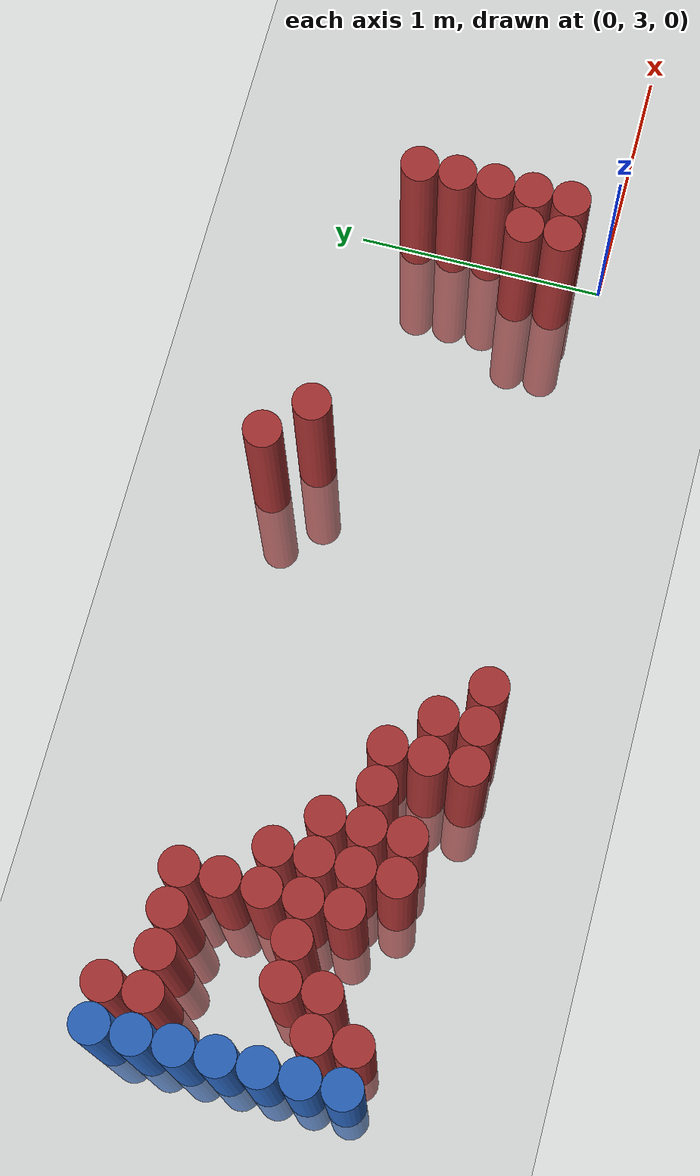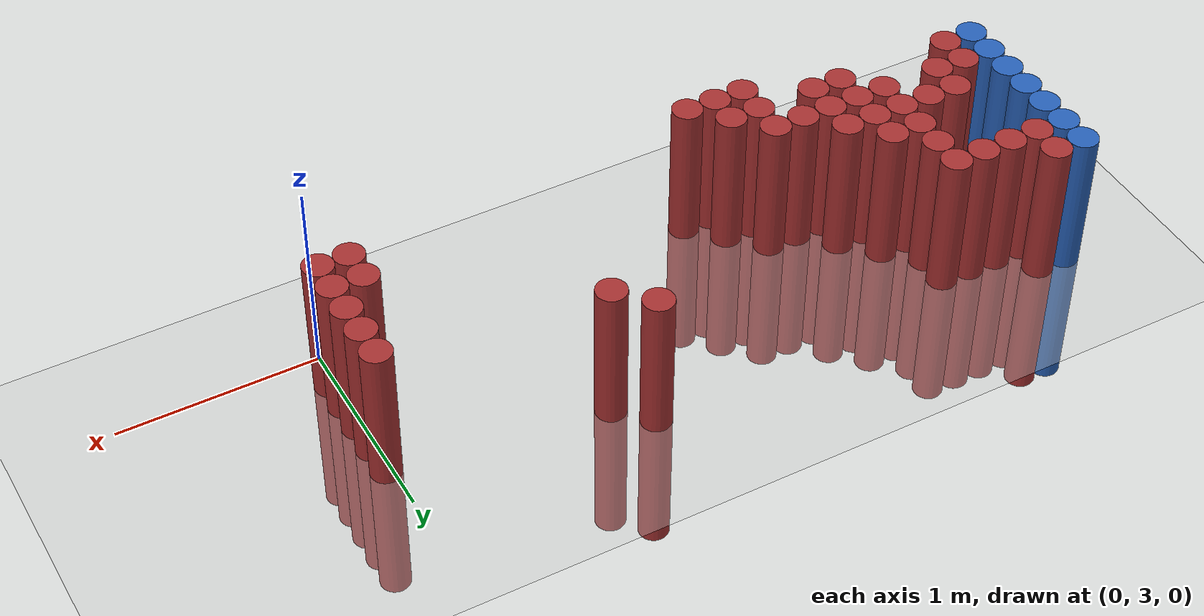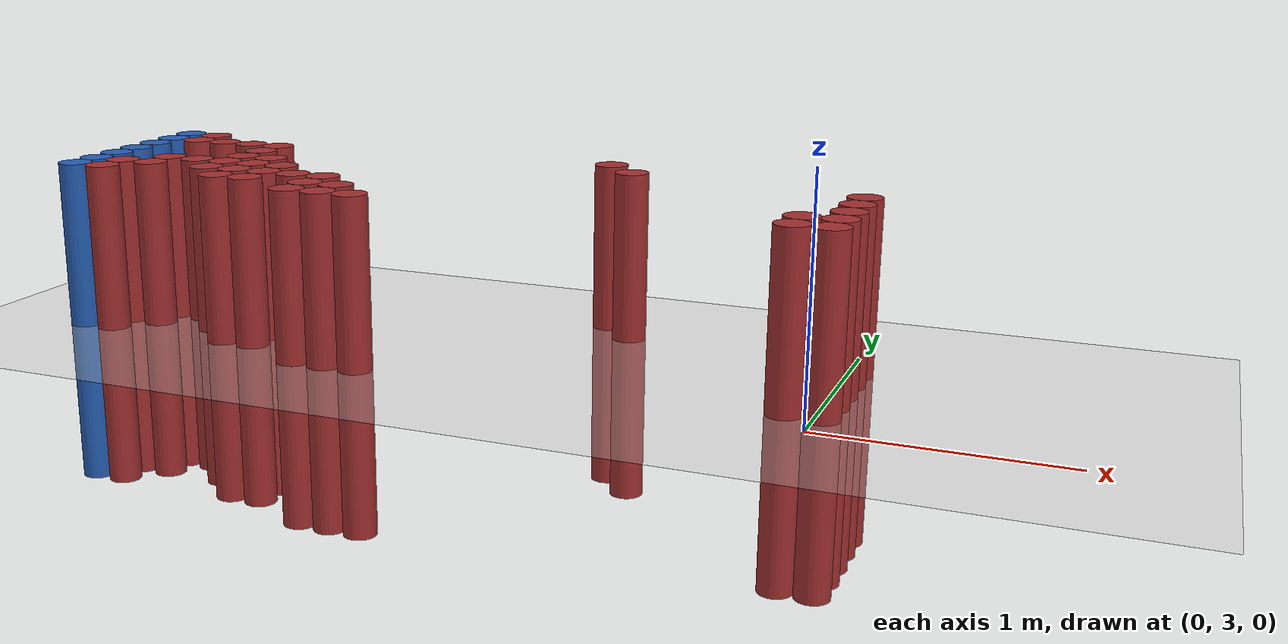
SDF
<sdf version="1.6">
 <world name="default">
  <model name="ground_plane">
   <static>1</static>
   <link name="link">
    <collision name="collision">
     <geometry><plane><normal>0 0 1</normal><size>100 100</size></plane></geometry>
     <surface><friction><ode><mu>100</mu><mu2>50</mu2></ode></friction></surface>
    </collision>
    <visual name="visual">
     <cast_shadows>0</cast_shadows>
     <geometry><plane><normal>0 0 1</normal><size>100 100</size></plane></geometry>
     <material>
      <script><uri>file://media/materials/scripts/gazebo.material</uri><name>Gazebo/Grey</name></script>
     </material>
    </visual>
   </link>
  </model>
  <model name="unit_cylinder_157">
   <static>1</static>
   <pose>-3.425000 3.175000 0.000000 0.000000 0.000000 0.000000</pose>
   <link name="link">
    <inertial>
     <mass>1</mass>
     <inertia><ixx>0.145833</ixx><ixy>0</ixy><ixz>0</ixz><iyy>0.145833</iyy><iyz>0</iyz><izz>0.125</izz></inertia>
    </inertial>
    <collision name="collision">
     <geometry><cylinder><radius>0.075000</radius><length>1.5</length></cylinder></geometry>
    </collision>
    <visual name="visual">
     <geometry><cylinder><radius>0.075000</radius><length>1.5</length></cylinder></geometry>
     <material>
      <ambient>0.152000 0.379000 0.720000 1</ambient>
      <diffuse>0.152000 0.379000 0.720000 1</diffuse>
     </material>
     <material>
      <script><name>Gazebo/Grey</name><uri>file://media/materials/scripts/gazebo.material</uri></script>
     </material>
    </visual>
   </link>
  </model>
  <model name="unit_cylinder_159">
   <static>1</static>
   <pose>-3.425000 3.325000 0.000000 0.000000 0.000000 0.000000</pose>
   <link name="link">
    <inertial>
     <mass>1</mass>
     <inertia><ixx>0.145833</ixx><ixy>0</ixy><ixz>0</ixz><iyy>0.145833</iyy><iyz>0</iyz><izz>0.125</izz></inertia>
    </inertial>
    <collision name="collision">
     <geometry><cylinder><radius>0.075000</radius><length>1.5</length></cylinder></geometry>
    </collision>
    <visual name="visual">
     <geometry><cylinder><radius>0.075000</radius><length>1.5</length></cylinder></geometry>
     <material>
      <ambient>0.152000 0.379000 0.720000 1</ambient>
      <diffuse>0.152000 0.379000 0.720000 1</diffuse>
     </material>
     <material>
      <script><name>Gazebo/Grey</name><uri>file://media/materials/scripts/gazebo.material</uri></script>
     </material>
    </visual>
   </link>
  </model>
  <model name="unit_cylinder_161">
   <static>1</static>
   <pose>-3.425000 3.475000 0.000000 0.000000 0.000000 0.000000</pose>
   <link name="link">
    <inertial>
     <mass>1</mass>
     <inertia><ixx>0.145833</ixx><ixy>0</ixy><ixz>0</ixz><iyy>0.145833</iyy><iyz>0</iyz><izz>0.125</izz></inertia>
    </inertial>
    <collision name="collision">
     <geometry><cylinder><radius>0.075000</radius><length>1.5</length></cylinder></geometry>
    </collision>
    <visual name="visual">
     <geometry><cylinder><radius>0.075000</radius><length>1.5</length></cylinder></geometry>
     <material>
      <ambient>0.152000 0.379000 0.720000 1</ambient>
      <diffuse>0.152000 0.379000 0.720000 1</diffuse>
     </material>
     <material>
      <script><name>Gazebo/Grey</name><uri>file://media/materials/scripts/gazebo.material</uri></script>
     </material>
    </visual>
   </link>
  </model>
  <model name="unit_cylinder_163">
   <static>1</static>
   <pose>-3.425000 3.625000 0.000000 0.000000 0.000000 0.000000</pose>
   <link name="link">
    <inertial>
     <mass>1</mass>
     <inertia><ixx>0.145833</ixx><ixy>0</ixy><ixz>0</ixz><iyy>0.145833</iyy><iyz>0</iyz><izz>0.125</izz></inertia>
    </inertial>
    <collision name="collision">
     <geometry><cylinder><radius>0.075000</radius><length>1.5</length></cylinder></geometry>
    </collision>
    <visual name="visual">
     <geometry><cylinder><radius>0.075000</radius><length>1.5</length></cylinder></geometry>
     <material>
      <ambient>0.152000 0.379000 0.720000 1</ambient>
      <diffuse>0.152000 0.379000 0.720000 1</diffuse>
     </material>
     <material>
      <script><name>Gazebo/Grey</name><uri>file://media/materials/scripts/gazebo.material</uri></script>
     </material>
    </visual>
   </link>
  </model>
  <model name="unit_cylinder_165">
   <static>1</static>
   <pose>-3.425000 3.775000 0.000000 0.000000 0.000000 0.000000</pose>
   <link name="link">
    <inertial>
     <mass>1</mass>
     <inertia><ixx>0.145833</ixx><ixy>0</ixy><ixz>0</ixz><iyy>0.145833</iyy><iyz>0</iyz><izz>0.125</izz></inertia>
    </inertial>
    <collision name="collision">
     <geometry><cylinder><radius>0.075000</radius><length>1.5</length></cylinder></geometry>
    </collision>
    <visual name="visual">
     <geometry><cylinder><radius>0.075000</radius><length>1.5</length></cylinder></geometry>
     <material>
      <ambient>0.152000 0.379000 0.720000 1</ambient>
      <diffuse>0.152000 0.379000 0.720000 1</diffuse>
     </material>
     <material>
      <script><name>Gazebo/Grey</name><uri>file://media/materials/scripts/gazebo.material</uri></script>
     </material>
    </visual>
   </link>
  </model>
  <model name="unit_cylinder_167">
   <static>1</static>
   <pose>-3.425000 3.925000 0.000000 0.000000 0.000000 0.000000</pose>
   <link name="link">
    <inertial>
     <mass>1</mass>
     <inertia><ixx>0.145833</ixx><ixy>0</ixy><ixz>0</ixz><iyy>0.145833</iyy><iyz>0</iyz><izz>0.125</izz></inertia>
    </inertial>
    <collision name="collision">
     <geometry><cylinder><radius>0.075000</radius><length>1.5</length></cylinder></geometry>
    </collision>
    <visual name="visual">
     <geometry><cylinder><radius>0.075000</radius><length>1.5</length></cylinder></geometry>
     <material>
      <ambient>0.152000 0.379000 0.720000 1</ambient>
      <diffuse>0.152000 0.379000 0.720000 1</diffuse>
     </material>
     <material>
      <script><name>Gazebo/Grey</name><uri>file://media/materials/scripts/gazebo.material</uri></script>
     </material>
    </visual>
   </link>
  </model>
  <model name="unit_cylinder_169">
   <static>1</static>
   <pose>-3.425000 4.075000 0.000000 0.000000 0.000000 0.000000</pose>
   <link name="link">
    <inertial>
     <mass>1</mass>
     <inertia><ixx>0.145833</ixx><ixy>0</ixy><ixz>0</ixz><iyy>0.145833</iyy><iyz>0</iyz><izz>0.125</izz></inertia>
    </inertial>
    <collision name="collision">
     <geometry><cylinder><radius>0.075000</radius><length>1.5</length></cylinder></geometry>
    </collision>
    <visual name="visual">
     <geometry><cylinder><radius>0.075000</radius><length>1.5</length></cylinder></geometry>
     <material>
      <ambient>0.152000 0.379000 0.720000 1</ambient>
      <diffuse>0.152000 0.379000 0.720000 1</diffuse>
     </material>
     <material>
      <script><name>Gazebo/Grey</name><uri>file://media/materials/scripts/gazebo.material</uri></script>
     </material>
    </visual>
   </link>
  </model>
  <model name="unit_cylinder_242">
   <static>1</static>
   <pose>-3.425000 3.175000 0.000000 0.000000 0.000000 0.000000</pose>
   <link name="link">
    <inertial>
     <mass>1</mass>
     <inertia><ixx>0.145833</ixx><ixy>0</ixy><ixz>0</ixz><iyy>0.145833</iyy><iyz>0</iyz><izz>0.125</izz></inertia>
    </inertial>
    <collision name="collision">
     <geometry><cylinder><radius>0.075000</radius><length>1.5</length></cylinder></geometry>
    </collision>
    <visual name="visual">
     <geometry><cylinder><radius>0.075000</radius><length>1.5</length></cylinder></geometry>
     <material>
      <ambient>0.152000 0.379000 0.720000 1</ambient>
      <diffuse>0.152000 0.379000 0.720000 1</diffuse>
     </material>
     <material>
      <script><name>Gazebo/Grey</name><uri>file://media/materials/scripts/gazebo.material</uri></script>
     </material>
    </visual>
   </link>
  </model>
  <model name="unit_cylinder_243">
   <static>1</static>
   <pose>-3.425000 3.325000 0.000000 0.000000 0.000000 0.000000</pose>
   <link name="link">
    <inertial>
     <mass>1</mass>
     <inertia><ixx>0.145833</ixx><ixy>0</ixy><ixz>0</ixz><iyy>0.145833</iyy><iyz>0</iyz><izz>0.125</izz></inertia>
    </inertial>
    <collision name="collision">
     <geometry><cylinder><radius>0.075000</radius><length>1.5</length></cylinder></geometry>
    </collision>
    <visual name="visual">
     <geometry><cylinder><radius>0.075000</radius><length>1.5</length></cylinder></geometry>
     <material>
      <ambient>0.152000 0.379000 0.720000 1</ambient>
      <diffuse>0.152000 0.379000 0.720000 1</diffuse>
     </material>
     <material>
      <script><name>Gazebo/Grey</name><uri>file://media/materials/scripts/gazebo.material</uri></script>
     </material>
    </visual>
   </link>
  </model>
  <model name="unit_cylinder_244">
   <static>1</static>
   <pose>-3.425000 3.475000 0.000000 0.000000 0.000000 0.000000</pose>
   <link name="link">
    <inertial>
     <mass>1</mass>
     <inertia><ixx>0.145833</ixx><ixy>0</ixy><ixz>0</ixz><iyy>0.145833</iyy><iyz>0</iyz><izz>0.125</izz></inertia>
    </inertial>
    <collision name="collision">
     <geometry><cylinder><radius>0.075000</radius><length>1.5</length></cylinder></geometry>
    </collision>
    <visual name="visual">
     <geometry><cylinder><radius>0.075000</radius><length>1.5</length></cylinder></geometry>
     <material>
      <ambient>0.152000 0.379000 0.720000 1</ambient>
      <diffuse>0.152000 0.379000 0.720000 1</diffuse>
     </material>
     <material>
      <script><name>Gazebo/Grey</name><uri>file://media/materials/scripts/gazebo.material</uri></script>
     </material>
    </visual>
   </link>
  </model>
  <model name="unit_cylinder_245">
   <static>1</static>
   <pose>-3.425000 3.625000 0.000000 0.000000 0.000000 0.000000</pose>
   <link name="link">
    <inertial>
     <mass>1</mass>
     <inertia><ixx>0.145833</ixx><ixy>0</ixy><ixz>0</ixz><iyy>0.145833</iyy><iyz>0</iyz><izz>0.125</izz></inertia>
    </inertial>
    <collision name="collision">
     <geometry><cylinder><radius>0.075000</radius><length>1.5</length></cylinder></geometry>
    </collision>
    <visual name="visual">
     <geometry><cylinder><radius>0.075000</radius><length>1.5</length></cylinder></geometry>
     <material>
      <ambient>0.152000 0.379000 0.720000 1</ambient>
      <diffuse>0.152000 0.379000 0.720000 1</diffuse>
     </material>
     <material>
      <script><name>Gazebo/Grey</name><uri>file://media/materials/scripts/gazebo.material</uri></script>
     </material>
    </visual>
   </link>
  </model>
  <model name="unit_cylinder_246">
   <static>1</static>
   <pose>-3.425000 3.775000 0.000000 0.000000 0.000000 0.000000</pose>
   <link name="link">
    <inertial>
     <mass>1</mass>
     <inertia><ixx>0.145833</ixx><ixy>0</ixy><ixz>0</ixz><iyy>0.145833</iyy><iyz>0</iyz><izz>0.125</izz></inertia>
    </inertial>
    <collision name="collision">
     <geometry><cylinder><radius>0.075000</radius><length>1.5</length></cylinder></geometry>
    </collision>
    <visual name="visual">
     <geometry><cylinder><radius>0.075000</radius><length>1.5</length></cylinder></geometry>
     <material>
      <ambient>0.152000 0.379000 0.720000 1</ambient>
      <diffuse>0.152000 0.379000 0.720000 1</diffuse>
     </material>
     <material>
      <script><name>Gazebo/Grey</name><uri>file://media/materials/scripts/gazebo.material</uri></script>
     </material>
    </visual>
   </link>
  </model>
  <model name="unit_cylinder_247">
   <static>1</static>
   <pose>-3.425000 3.925000 0.000000 0.000000 0.000000 0.000000</pose>
   <link name="link">
    <inertial>
     <mass>1</mass>
     <inertia><ixx>0.145833</ixx><ixy>0</ixy><ixz>0</ixz><iyy>0.145833</iyy><iyz>0</iyz><izz>0.125</izz></inertia>
    </inertial>
    <collision name="collision">
     <geometry><cylinder><radius>0.075000</radius><length>1.5</length></cylinder></geometry>
    </collision>
    <visual name="visual">
     <geometry><cylinder><radius>0.075000</radius><length>1.5</length></cylinder></geometry>
     <material>
      <ambient>0.152000 0.379000 0.720000 1</ambient>
      <diffuse>0.152000 0.379000 0.720000 1</diffuse>
     </material>
     <material>
      <script><name>Gazebo/Grey</name><uri>file://media/materials/scripts/gazebo.material</uri></script>
     </material>
    </visual>
   </link>
  </model>
  <model name="unit_cylinder_248">
   <static>1</static>
   <pose>-3.425000 4.075000 0.000000 0.000000 0.000000 0.000000</pose>
   <link name="link">
    <inertial>
     <mass>1</mass>
     <inertia><ixx>0.145833</ixx><ixy>0</ixy><ixz>0</ixz><iyy>0.145833</iyy><iyz>0</iyz><izz>0.125</izz></inertia>
    </inertial>
    <collision name="collision">
     <geometry><cylinder><radius>0.075000</radius><length>1.5</length></cylinder></geometry>
    </collision>
    <visual name="visual">
     <geometry><cylinder><radius>0.075000</radius><length>1.5</length></cylinder></geometry>
     <material>
      <ambient>0.152000 0.379000 0.720000 1</ambient>
      <diffuse>0.152000 0.379000 0.720000 1</diffuse>
     </material>
     <material>
      <script><name>Gazebo/Grey</name><uri>file://media/materials/scripts/gazebo.material</uri></script>
     </material>
    </visual>
   </link>
  </model>
  <model name="unit_cylinder_272">
   <static>1</static>
   <pose>-3.275000 3.175000 0.000000 0.000000 0.000000 0.000000</pose>
   <link name="link">
    <inertial>
     <mass>1</mass>
     <inertia><ixx>0.145833</ixx><ixy>0</ixy><ixz>0</ixz><iyy>0.145833</iyy><iyz>0</iyz><izz>0.125</izz></inertia>
    </inertial>
    <collision name="collision">
     <geometry><cylinder><radius>0.075000</radius><length>1.5</length></cylinder></geometry>
    </collision>
    <visual name="visual">
     <geometry><cylinder><radius>0.075000</radius><length>1.5</length></cylinder></geometry>
     <material>
      <ambient>0.648000 0.192000 0.192000 1</ambient>
      <diffuse>0.648000 0.192000 0.192000 1</diffuse>
     </material>
     <material>
      <script><name>Gazebo/Grey</name><uri>file://media/materials/scripts/gazebo.material</uri></script>
     </material>
    </visual>
   </link>
  </model>
  <model name="unit_cylinder_273">
   <static>1</static>
   <pose>-3.275000 3.325000 0.000000 0.000000 0.000000 0.000000</pose>
   <link name="link">
    <inertial>
     <mass>1</mass>
     <inertia><ixx>0.145833</ixx><ixy>0</ixy><ixz>0</ixz><iyy>0.145833</iyy><iyz>0</iyz><izz>0.125</izz></inertia>
    </inertial>
    <collision name="collision">
     <geometry><cylinder><radius>0.075000</radius><length>1.5</length></cylinder></geometry>
    </collision>
    <visual name="visual">
     <geometry><cylinder><radius>0.075000</radius><length>1.5</length></cylinder></geometry>
     <material>
      <ambient>0.648000 0.192000 0.192000 1</ambient>
      <diffuse>0.648000 0.192000 0.192000 1</diffuse>
     </material>
     <material>
      <script><name>Gazebo/Grey</name><uri>file://media/materials/scripts/gazebo.material</uri></script>
     </material>
    </visual>
   </link>
  </model>
  <model name="unit_cylinder_274">
   <static>1</static>
   <pose>-3.275000 3.925000 0.000000 0.000000 0.000000 0.000000</pose>
   <link name="link">
    <inertial>
     <mass>1</mass>
     <inertia><ixx>0.145833</ixx><ixy>0</ixy><ixz>0</ixz><iyy>0.145833</iyy><iyz>0</iyz><izz>0.125</izz></inertia>
    </inertial>
    <collision name="collision">
     <geometry><cylinder><radius>0.075000</radius><length>1.5</length></cylinder></geometry>
    </collision>
    <visual name="visual">
     <geometry><cylinder><radius>0.075000</radius><length>1.5</length></cylinder></geometry>
     <material>
      <ambient>0.648000 0.192000 0.192000 1</ambient>
      <diffuse>0.648000 0.192000 0.192000 1</diffuse>
     </material>
     <material>
      <script><name>Gazebo/Grey</name><uri>file://media/materials/scripts/gazebo.material</uri></script>
     </material>
    </visual>
   </link>
  </model>
  <model name="unit_cylinder_275">
   <static>1</static>
   <pose>-3.275000 4.075000 0.000000 0.000000 0.000000 0.000000</pose>
   <link name="link">
    <inertial>
     <mass>1</mass>
     <inertia><ixx>0.145833</ixx><ixy>0</ixy><ixz>0</ixz><iyy>0.145833</iyy><iyz>0</iyz><izz>0.125</izz></inertia>
    </inertial>
    <collision name="collision">
     <geometry><cylinder><radius>0.075000</radius><length>1.5</length></cylinder></geometry>
    </collision>
    <visual name="visual">
     <geometry><cylinder><radius>0.075000</radius><length>1.5</length></cylinder></geometry>
     <material>
      <ambient>0.648000 0.192000 0.192000 1</ambient>
      <diffuse>0.648000 0.192000 0.192000 1</diffuse>
     </material>
     <material>
      <script><name>Gazebo/Grey</name><uri>file://media/materials/scripts/gazebo.material</uri></script>
     </material>
    </visual>
   </link>
  </model>
  <model name="unit_cylinder_282">
   <static>1</static>
   <pose>-3.125000 3.325000 0.000000 0.000000 0.000000 0.000000</pose>
   <link name="link">
    <inertial>
     <mass>1</mass>
     <inertia><ixx>0.145833</ixx><ixy>0</ixy><ixz>0</ixz><iyy>0.145833</iyy><iyz>0</iyz><izz>0.125</izz></inertia>
    </inertial>
    <collision name="collision">
     <geometry><cylinder><radius>0.075000</radius><length>1.5</length></cylinder></geometry>
    </collision>
    <visual name="visual">
     <geometry><cylinder><radius>0.075000</radius><length>1.5</length></cylinder></geometry>
     <material>
      <ambient>0.648000 0.192000 0.192000 1</ambient>
      <diffuse>0.648000 0.192000 0.192000 1</diffuse>
     </material>
     <material>
      <script><name>Gazebo/Grey</name><uri>file://media/materials/scripts/gazebo.material</uri></script>
     </material>
    </visual>
   </link>
  </model>
  <model name="unit_cylinder_283">
   <static>1</static>
   <pose>-3.125000 3.475000 0.000000 0.000000 0.000000 0.000000</pose>
   <link name="link">
    <inertial>
     <mass>1</mass>
     <inertia><ixx>0.145833</ixx><ixy>0</ixy><ixz>0</ixz><iyy>0.145833</iyy><iyz>0</iyz><izz>0.125</izz></inertia>
    </inertial>
    <collision name="collision">
     <geometry><cylinder><radius>0.075000</radius><length>1.5</length></cylinder></geometry>
    </collision>
    <visual name="visual">
     <geometry><cylinder><radius>0.075000</radius><length>1.5</length></cylinder></geometry>
     <material>
      <ambient>0.648000 0.192000 0.192000 1</ambient>
      <diffuse>0.648000 0.192000 0.192000 1</diffuse>
     </material>
     <material>
      <script><name>Gazebo/Grey</name><uri>file://media/materials/scripts/gazebo.material</uri></script>
     </material>
    </visual>
   </link>
  </model>
  <model name="unit_cylinder_284">
   <static>1</static>
   <pose>-3.125000 3.925000 0.000000 0.000000 0.000000 0.000000</pose>
   <link name="link">
    <inertial>
     <mass>1</mass>
     <inertia><ixx>0.145833</ixx><ixy>0</ixy><ixz>0</ixz><iyy>0.145833</iyy><iyz>0</iyz><izz>0.125</izz></inertia>
    </inertial>
    <collision name="collision">
     <geometry><cylinder><radius>0.075000</radius><length>1.5</length></cylinder></geometry>
    </collision>
    <visual name="visual">
     <geometry><cylinder><radius>0.075000</radius><length>1.5</length></cylinder></geometry>
     <material>
      <ambient>0.648000 0.192000 0.192000 1</ambient>
      <diffuse>0.648000 0.192000 0.192000 1</diffuse>
     </material>
     <material>
      <script><name>Gazebo/Grey</name><uri>file://media/materials/scripts/gazebo.material</uri></script>
     </material>
    </visual>
   </link>
  </model>
  <model name="unit_cylinder_287">
   <static>1</static>
   <pose>-2.975000 3.475000 0.000000 0.000000 0.000000 0.000000</pose>
   <link name="link">
    <inertial>
     <mass>1</mass>
     <inertia><ixx>0.145833</ixx><ixy>0</ixy><ixz>0</ixz><iyy>0.145833</iyy><iyz>0</iyz><izz>0.125</izz></inertia>
    </inertial>
    <collision name="collision">
     <geometry><cylinder><radius>0.075000</radius><length>1.5</length></cylinder></geometry>
    </collision>
    <visual name="visual">
     <geometry><cylinder><radius>0.075000</radius><length>1.5</length></cylinder></geometry>
     <material>
      <ambient>0.648000 0.192000 0.192000 1</ambient>
      <diffuse>0.648000 0.192000 0.192000 1</diffuse>
     </material>
     <material>
      <script><name>Gazebo/Grey</name><uri>file://media/materials/scripts/gazebo.material</uri></script>
     </material>
    </visual>
   </link>
  </model>
  <model name="unit_cylinder_288">
   <static>1</static>
   <pose>-2.975000 3.925000 0.000000 0.000000 0.000000 0.000000</pose>
   <link name="link">
    <inertial>
     <mass>1</mass>
     <inertia><ixx>0.145833</ixx><ixy>0</ixy><ixz>0</ixz><iyy>0.145833</iyy><iyz>0</iyz><izz>0.125</izz></inertia>
    </inertial>
    <collision name="collision">
     <geometry><cylinder><radius>0.075000</radius><length>1.5</length></cylinder></geometry>
    </collision>
    <visual name="visual">
     <geometry><cylinder><radius>0.075000</radius><length>1.5</length></cylinder></geometry>
     <material>
      <ambient>0.648000 0.192000 0.192000 1</ambient>
      <diffuse>0.648000 0.192000 0.192000 1</diffuse>
     </material>
     <material>
      <script><name>Gazebo/Grey</name><uri>file://media/materials/scripts/gazebo.material</uri></script>
     </material>
    </visual>
   </link>
  </model>
  <model name="unit_cylinder_290">
   <static>1</static>
   <pose>-2.825000 3.325000 0.000000 0.000000 0.000000 0.000000</pose>
   <link name="link">
    <inertial>
     <mass>1</mass>
     <inertia><ixx>0.145833</ixx><ixy>0</ixy><ixz>0</ixz><iyy>0.145833</iyy><iyz>0</iyz><izz>0.125</izz></inertia>
    </inertial>
    <collision name="collision">
     <geometry><cylinder><radius>0.075000</radius><length>1.5</length></cylinder></geometry>
    </collision>
    <visual name="visual">
     <geometry><cylinder><radius>0.075000</radius><length>1.5</length></cylinder></geometry>
     <material>
      <ambient>0.648000 0.192000 0.192000 1</ambient>
      <diffuse>0.648000 0.192000 0.192000 1</diffuse>
     </material>
     <material>
      <script><name>Gazebo/Grey</name><uri>file://media/materials/scripts/gazebo.material</uri></script>
     </material>
    </visual>
   </link>
  </model>
  <model name="unit_cylinder_291">
   <static>1</static>
   <pose>-2.825000 3.475000 0.000000 0.000000 0.000000 0.000000</pose>
   <link name="link">
    <inertial>
     <mass>1</mass>
     <inertia><ixx>0.145833</ixx><ixy>0</ixy><ixz>0</ixz><iyy>0.145833</iyy><iyz>0</iyz><izz>0.125</izz></inertia>
    </inertial>
    <collision name="collision">
     <geometry><cylinder><radius>0.075000</radius><length>1.5</length></cylinder></geometry>
    </collision>
    <visual name="visual">
     <geometry><cylinder><radius>0.075000</radius><length>1.5</length></cylinder></geometry>
     <material>
      <ambient>0.648000 0.192000 0.192000 1</ambient>
      <diffuse>0.648000 0.192000 0.192000 1</diffuse>
     </material>
     <material>
      <script><name>Gazebo/Grey</name><uri>file://media/materials/scripts/gazebo.material</uri></script>
     </material>
    </visual>
   </link>
  </model>
  <model name="unit_cylinder_292">
   <static>1</static>
   <pose>-2.825000 3.625000 0.000000 0.000000 0.000000 0.000000</pose>
   <link name="link">
    <inertial>
     <mass>1</mass>
     <inertia><ixx>0.145833</ixx><ixy>0</ixy><ixz>0</ixz><iyy>0.145833</iyy><iyz>0</iyz><izz>0.125</izz></inertia>
    </inertial>
    <collision name="collision">
     <geometry><cylinder><radius>0.075000</radius><length>1.5</length></cylinder></geometry>
    </collision>
    <visual name="visual">
     <geometry><cylinder><radius>0.075000</radius><length>1.5</length></cylinder></geometry>
     <material>
      <ambient>0.648000 0.192000 0.192000 1</ambient>
      <diffuse>0.648000 0.192000 0.192000 1</diffuse>
     </material>
     <material>
      <script><name>Gazebo/Grey</name><uri>file://media/materials/scripts/gazebo.material</uri></script>
     </material>
    </visual>
   </link>
  </model>
  <model name="unit_cylinder_293">
   <static>1</static>
   <pose>-2.825000 3.775000 0.000000 0.000000 0.000000 0.000000</pose>
   <link name="link">
    <inertial>
     <mass>1</mass>
     <inertia><ixx>0.145833</ixx><ixy>0</ixy><ixz>0</ixz><iyy>0.145833</iyy><iyz>0</iyz><izz>0.125</izz></inertia>
    </inertial>
    <collision name="collision">
     <geometry><cylinder><radius>0.075000</radius><length>1.5</length></cylinder></geometry>
    </collision>
    <visual name="visual">
     <geometry><cylinder><radius>0.075000</radius><length>1.5</length></cylinder></geometry>
     <material>
      <ambient>0.648000 0.192000 0.192000 1</ambient>
      <diffuse>0.648000 0.192000 0.192000 1</diffuse>
     </material>
     <material>
      <script><name>Gazebo/Grey</name><uri>file://media/materials/scripts/gazebo.material</uri></script>
     </material>
    </visual>
   </link>
  </model>
  <model name="unit_cylinder_294">
   <static>1</static>
   <pose>-2.825000 3.925000 0.000000 0.000000 0.000000 0.000000</pose>
   <link name="link">
    <inertial>
     <mass>1</mass>
     <inertia><ixx>0.145833</ixx><ixy>0</ixy><ixz>0</ixz><iyy>0.145833</iyy><iyz>0</iyz><izz>0.125</izz></inertia>
    </inertial>
    <collision name="collision">
     <geometry><cylinder><radius>0.075000</radius><length>1.5</length></cylinder></geometry>
    </collision>
    <visual name="visual">
     <geometry><cylinder><radius>0.075000</radius><length>1.5</length></cylinder></geometry>
     <material>
      <ambient>0.648000 0.192000 0.192000 1</ambient>
      <diffuse>0.648000 0.192000 0.192000 1</diffuse>
     </material>
     <material>
      <script><name>Gazebo/Grey</name><uri>file://media/materials/scripts/gazebo.material</uri></script>
     </material>
    </visual>
   </link>
  </model>
  <model name="unit_cylinder_303">
   <static>1</static>
   <pose>-2.675000 3.175000 0.000000 0.000000 0.000000 0.000000</pose>
   <link name="link">
    <inertial>
     <mass>1</mass>
     <inertia><ixx>0.145833</ixx><ixy>0</ixy><ixz>0</ixz><iyy>0.145833</iyy><iyz>0</iyz><izz>0.125</izz></inertia>
    </inertial>
    <collision name="collision">
     <geometry><cylinder><radius>0.075000</radius><length>1.5</length></cylinder></geometry>
    </collision>
    <visual name="visual">
     <geometry><cylinder><radius>0.075000</radius><length>1.5</length></cylinder></geometry>
     <material>
      <ambient>0.648000 0.192000 0.192000 1</ambient>
      <diffuse>0.648000 0.192000 0.192000 1</diffuse>
     </material>
     <material>
      <script><name>Gazebo/Grey</name><uri>file://media/materials/scripts/gazebo.material</uri></script>
     </material>
    </visual>
   </link>
  </model>
  <model name="unit_cylinder_304">
   <static>1</static>
   <pose>-2.675000 3.325000 0.000000 0.000000 0.000000 0.000000</pose>
   <link name="link">
    <inertial>
     <mass>1</mass>
     <inertia><ixx>0.145833</ixx><ixy>0</ixy><ixz>0</ixz><iyy>0.145833</iyy><iyz>0</iyz><izz>0.125</izz></inertia>
    </inertial>
    <collision name="collision">
     <geometry><cylinder><radius>0.075000</radius><length>1.5</length></cylinder></geometry>
    </collision>
    <visual name="visual">
     <geometry><cylinder><radius>0.075000</radius><length>1.5</length></cylinder></geometry>
     <material>
      <ambient>0.648000 0.192000 0.192000 1</ambient>
      <diffuse>0.648000 0.192000 0.192000 1</diffuse>
     </material>
     <material>
      <script><name>Gazebo/Grey</name><uri>file://media/materials/scripts/gazebo.material</uri></script>
     </material>
    </visual>
   </link>
  </model>
  <model name="unit_cylinder_305">
   <static>1</static>
   <pose>-2.675000 3.475000 0.000000 0.000000 0.000000 0.000000</pose>
   <link name="link">
    <inertial>
     <mass>1</mass>
     <inertia><ixx>0.145833</ixx><ixy>0</ixy><ixz>0</ixz><iyy>0.145833</iyy><iyz>0</iyz><izz>0.125</izz></inertia>
    </inertial>
    <collision name="collision">
     <geometry><cylinder><radius>0.075000</radius><length>1.5</length></cylinder></geometry>
    </collision>
    <visual name="visual">
     <geometry><cylinder><radius>0.075000</radius><length>1.5</length></cylinder></geometry>
     <material>
      <ambient>0.648000 0.192000 0.192000 1</ambient>
      <diffuse>0.648000 0.192000 0.192000 1</diffuse>
     </material>
     <material>
      <script><name>Gazebo/Grey</name><uri>file://media/materials/scripts/gazebo.material</uri></script>
     </material>
    </visual>
   </link>
  </model>
  <model name="unit_cylinder_306">
   <static>1</static>
   <pose>-2.675000 3.625000 0.000000 0.000000 0.000000 0.000000</pose>
   <link name="link">
    <inertial>
     <mass>1</mass>
     <inertia><ixx>0.145833</ixx><ixy>0</ixy><ixz>0</ixz><iyy>0.145833</iyy><iyz>0</iyz><izz>0.125</izz></inertia>
    </inertial>
    <collision name="collision">
     <geometry><cylinder><radius>0.075000</radius><length>1.5</length></cylinder></geometry>
    </collision>
    <visual name="visual">
     <geometry><cylinder><radius>0.075000</radius><length>1.5</length></cylinder></geometry>
     <material>
      <ambient>0.648000 0.192000 0.192000 1</ambient>
      <diffuse>0.648000 0.192000 0.192000 1</diffuse>
     </material>
     <material>
      <script><name>Gazebo/Grey</name><uri>file://media/materials/scripts/gazebo.material</uri></script>
     </material>
    </visual>
   </link>
  </model>
  <model name="unit_cylinder_320">
   <static>1</static>
   <pose>-2.525000 3.175000 0.000000 0.000000 0.000000 0.000000</pose>
   <link name="link">
    <inertial>
     <mass>1</mass>
     <inertia><ixx>0.145833</ixx><ixy>0</ixy><ixz>0</ixz><iyy>0.145833</iyy><iyz>0</iyz><izz>0.125</izz></inertia>
    </inertial>
    <collision name="collision">
     <geometry><cylinder><radius>0.075000</radius><length>1.5</length></cylinder></geometry>
    </collision>
    <visual name="visual">
     <geometry><cylinder><radius>0.075000</radius><length>1.5</length></cylinder></geometry>
     <material>
      <ambient>0.648000 0.192000 0.192000 1</ambient>
      <diffuse>0.648000 0.192000 0.192000 1</diffuse>
     </material>
     <material>
      <script><name>Gazebo/Grey</name><uri>file://media/materials/scripts/gazebo.material</uri></script>
     </material>
    </visual>
   </link>
  </model>
  <model name="unit_cylinder_321">
   <static>1</static>
   <pose>-2.525000 3.325000 0.000000 0.000000 0.000000 0.000000</pose>
   <link name="link">
    <inertial>
     <mass>1</mass>
     <inertia><ixx>0.145833</ixx><ixy>0</ixy><ixz>0</ixz><iyy>0.145833</iyy><iyz>0</iyz><izz>0.125</izz></inertia>
    </inertial>
    <collision name="collision">
     <geometry><cylinder><radius>0.075000</radius><length>1.5</length></cylinder></geometry>
    </collision>
    <visual name="visual">
     <geometry><cylinder><radius>0.075000</radius><length>1.5</length></cylinder></geometry>
     <material>
      <ambient>0.648000 0.192000 0.192000 1</ambient>
      <diffuse>0.648000 0.192000 0.192000 1</diffuse>
     </material>
     <material>
      <script><name>Gazebo/Grey</name><uri>file://media/materials/scripts/gazebo.material</uri></script>
     </material>
    </visual>
   </link>
  </model>
  <model name="unit_cylinder_322">
   <static>1</static>
   <pose>-2.525000 3.475000 0.000000 0.000000 0.000000 0.000000</pose>
   <link name="link">
    <inertial>
     <mass>1</mass>
     <inertia><ixx>0.145833</ixx><ixy>0</ixy><ixz>0</ixz><iyy>0.145833</iyy><iyz>0</iyz><izz>0.125</izz></inertia>
    </inertial>
    <collision name="collision">
     <geometry><cylinder><radius>0.075000</radius><length>1.5</length></cylinder></geometry>
    </collision>
    <visual name="visual">
     <geometry><cylinder><radius>0.075000</radius><length>1.5</length></cylinder></geometry>
     <material>
      <ambient>0.648000 0.192000 0.192000 1</ambient>
      <diffuse>0.648000 0.192000 0.192000 1</diffuse>
     </material>
     <material>
      <script><name>Gazebo/Grey</name><uri>file://media/materials/scripts/gazebo.material</uri></script>
     </material>
    </visual>
   </link>
  </model>
  <model name="unit_cylinder_337">
   <static>1</static>
   <pose>-2.375000 3.325000 0.000000 0.000000 0.000000 0.000000</pose>
   <link name="link">
    <inertial>
     <mass>1</mass>
     <inertia><ixx>0.145833</ixx><ixy>0</ixy><ixz>0</ixz><iyy>0.145833</iyy><iyz>0</iyz><izz>0.125</izz></inertia>
    </inertial>
    <collision name="collision">
     <geometry><cylinder><radius>0.075000</radius><length>1.5</length></cylinder></geometry>
    </collision>
    <visual name="visual">
     <geometry><cylinder><radius>0.075000</radius><length>1.5</length></cylinder></geometry>
     <material>
      <ambient>0.648000 0.192000 0.192000 1</ambient>
      <diffuse>0.648000 0.192000 0.192000 1</diffuse>
     </material>
     <material>
      <script><name>Gazebo/Grey</name><uri>file://media/materials/scripts/gazebo.material</uri></script>
     </material>
    </visual>
   </link>
  </model>
  <model name="unit_cylinder_345">
   <static>1</static>
   <pose>-2.225000 3.025000 0.000000 0.000000 0.000000 0.000000</pose>
   <link name="link">
    <inertial>
     <mass>1</mass>
     <inertia><ixx>0.145833</ixx><ixy>0</ixy><ixz>0</ixz><iyy>0.145833</iyy><iyz>0</iyz><izz>0.125</izz></inertia>
    </inertial>
    <collision name="collision">
     <geometry><cylinder><radius>0.075000</radius><length>1.5</length></cylinder></geometry>
    </collision>
    <visual name="visual">
     <geometry><cylinder><radius>0.075000</radius><length>1.5</length></cylinder></geometry>
     <material>
      <ambient>0.648000 0.192000 0.192000 1</ambient>
      <diffuse>0.648000 0.192000 0.192000 1</diffuse>
     </material>
     <material>
      <script><name>Gazebo/Grey</name><uri>file://media/materials/scripts/gazebo.material</uri></script>
     </material>
    </visual>
   </link>
  </model>
  <model name="unit_cylinder_346">
   <static>1</static>
   <pose>-2.225000 3.175000 0.000000 0.000000 0.000000 0.000000</pose>
   <link name="link">
    <inertial>
     <mass>1</mass>
     <inertia><ixx>0.145833</ixx><ixy>0</ixy><ixz>0</ixz><iyy>0.145833</iyy><iyz>0</iyz><izz>0.125</izz></inertia>
    </inertial>
    <collision name="collision">
     <geometry><cylinder><radius>0.075000</radius><length>1.5</length></cylinder></geometry>
    </collision>
    <visual name="visual">
     <geometry><cylinder><radius>0.075000</radius><length>1.5</length></cylinder></geometry>
     <material>
      <ambient>0.648000 0.192000 0.192000 1</ambient>
      <diffuse>0.648000 0.192000 0.192000 1</diffuse>
     </material>
     <material>
      <script><name>Gazebo/Grey</name><uri>file://media/materials/scripts/gazebo.material</uri></script>
     </material>
    </visual>
   </link>
  </model>
  <model name="unit_cylinder_347">
   <static>1</static>
   <pose>-2.225000 3.325000 0.000000 0.000000 0.000000 0.000000</pose>
   <link name="link">
    <inertial>
     <mass>1</mass>
     <inertia><ixx>0.145833</ixx><ixy>0</ixy><ixz>0</ixz><iyy>0.145833</iyy><iyz>0</iyz><izz>0.125</izz></inertia>
    </inertial>
    <collision name="collision">
     <geometry><cylinder><radius>0.075000</radius><length>1.5</length></cylinder></geometry>
    </collision>
    <visual name="visual">
     <geometry><cylinder><radius>0.075000</radius><length>1.5</length></cylinder></geometry>
     <material>
      <ambient>0.648000 0.192000 0.192000 1</ambient>
      <diffuse>0.648000 0.192000 0.192000 1</diffuse>
     </material>
     <material>
      <script><name>Gazebo/Grey</name><uri>file://media/materials/scripts/gazebo.material</uri></script>
     </material>
    </visual>
   </link>
  </model>
  <model name="unit_cylinder_353">
   <static>1</static>
   <pose>-2.075000 3.025000 0.000000 0.000000 0.000000 0.000000</pose>
   <link name="link">
    <inertial>
     <mass>1</mass>
     <inertia><ixx>0.145833</ixx><ixy>0</ixy><ixz>0</ixz><iyy>0.145833</iyy><iyz>0</iyz><izz>0.125</izz></inertia>
    </inertial>
    <collision name="collision">
     <geometry><cylinder><radius>0.075000</radius><length>1.5</length></cylinder></geometry>
    </collision>
    <visual name="visual">
     <geometry><cylinder><radius>0.075000</radius><length>1.5</length></cylinder></geometry>
     <material>
      <ambient>0.648000 0.192000 0.192000 1</ambient>
      <diffuse>0.648000 0.192000 0.192000 1</diffuse>
     </material>
     <material>
      <script><name>Gazebo/Grey</name><uri>file://media/materials/scripts/gazebo.material</uri></script>
     </material>
    </visual>
   </link>
  </model>
  <model name="unit_cylinder_354">
   <static>1</static>
   <pose>-2.075000 3.175000 0.000000 0.000000 0.000000 0.000000</pose>
   <link name="link">
    <inertial>
     <mass>1</mass>
     <inertia><ixx>0.145833</ixx><ixy>0</ixy><ixz>0</ixz><iyy>0.145833</iyy><iyz>0</iyz><izz>0.125</izz></inertia>
    </inertial>
    <collision name="collision">
     <geometry><cylinder><radius>0.075000</radius><length>1.5</length></cylinder></geometry>
    </collision>
    <visual name="visual">
     <geometry><cylinder><radius>0.075000</radius><length>1.5</length></cylinder></geometry>
     <material>
      <ambient>0.648000 0.192000 0.192000 1</ambient>
      <diffuse>0.648000 0.192000 0.192000 1</diffuse>
     </material>
     <material>
      <script><name>Gazebo/Grey</name><uri>file://media/materials/scripts/gazebo.material</uri></script>
     </material>
    </visual>
   </link>
  </model>
  <model name="unit_cylinder_358">
   <static>1</static>
   <pose>-1.925000 3.025000 0.000000 0.000000 0.000000 0.000000</pose>
   <link name="link">
    <inertial>
     <mass>1</mass>
     <inertia><ixx>0.145833</ixx><ixy>0</ixy><ixz>0</ixz><iyy>0.145833</iyy><iyz>0</iyz><izz>0.125</izz></inertia>
    </inertial>
    <collision name="collision">
     <geometry><cylinder><radius>0.075000</radius><length>1.5</length></cylinder></geometry>
    </collision>
    <visual name="visual">
     <geometry><cylinder><radius>0.075000</radius><length>1.5</length></cylinder></geometry>
     <material>
      <ambient>0.648000 0.192000 0.192000 1</ambient>
      <diffuse>0.648000 0.192000 0.192000 1</diffuse>
     </material>
     <material>
      <script><name>Gazebo/Grey</name><uri>file://media/materials/scripts/gazebo.material</uri></script>
     </material>
    </visual>
   </link>
  </model>
  <model name="unit_cylinder_385">
   <static>1</static>
   <pose>-1.175000 4.075000 0.000000 0.000000 0.000000 0.000000</pose>
   <link name="link">
    <inertial>
     <mass>1</mass>
     <inertia><ixx>0.145833</ixx><ixy>0</ixy><ixz>0</ixz><iyy>0.145833</iyy><iyz>0</iyz><izz>0.125</izz></inertia>
    </inertial>
    <collision name="collision">
     <geometry><cylinder><radius>0.075000</radius><length>1.5</length></cylinder></geometry>
    </collision>
    <visual name="visual">
     <geometry><cylinder><radius>0.075000</radius><length>1.5</length></cylinder></geometry>
     <material>
      <ambient>0.648000 0.192000 0.192000 1</ambient>
      <diffuse>0.648000 0.192000 0.192000 1</diffuse>
     </material>
     <material>
      <script><name>Gazebo/Grey</name><uri>file://media/materials/scripts/gazebo.material</uri></script>
     </material>
    </visual>
   </link>
  </model>
  <model name="unit_cylinder_392">
   <static>1</static>
   <pose>-1.025000 3.925000 0.000000 0.000000 0.000000 0.000000</pose>
   <link name="link">
    <inertial>
     <mass>1</mass>
     <inertia><ixx>0.145833</ixx><ixy>0</ixy><ixz>0</ixz><iyy>0.145833</iyy><iyz>0</iyz><izz>0.125</izz></inertia>
    </inertial>
    <collision name="collision">
     <geometry><cylinder><radius>0.075000</radius><length>1.5</length></cylinder></geometry>
    </collision>
    <visual name="visual">
     <geometry><cylinder><radius>0.075000</radius><length>1.5</length></cylinder></geometry>
     <material>
      <ambient>0.648000 0.192000 0.192000 1</ambient>
      <diffuse>0.648000 0.192000 0.192000 1</diffuse>
     </material>
     <material>
      <script><name>Gazebo/Grey</name><uri>file://media/materials/scripts/gazebo.material</uri></script>
     </material>
    </visual>
   </link>
  </model>
  <model name="unit_cylinder_402">
   <static>1</static>
   <pose>-0.125000 3.175000 0.000000 0.000000 0.000000 0.000000</pose>
   <link name="link">
    <inertial>
     <mass>1</mass>
     <inertia><ixx>0.145833</ixx><ixy>0</ixy><ixz>0</ixz><iyy>0.145833</iyy><iyz>0</iyz><izz>0.125</izz></inertia>
    </inertial>
    <collision name="collision">
     <geometry><cylinder><radius>0.075000</radius><length>1.5</length></cylinder></geometry>
    </collision>
    <visual name="visual">
     <geometry><cylinder><radius>0.075000</radius><length>1.5</length></cylinder></geometry>
     <material>
      <ambient>0.648000 0.192000 0.192000 1</ambient>
      <diffuse>0.648000 0.192000 0.192000 1</diffuse>
     </material>
     <material>
      <script><name>Gazebo/Grey</name><uri>file://media/materials/scripts/gazebo.material</uri></script>
     </material>
    </visual>
   </link>
  </model>
  <model name="unit_cylinder_403">
   <static>1</static>
   <pose>-0.125000 3.325000 0.000000 0.000000 0.000000 0.000000</pose>
   <link name="link">
    <inertial>
     <mass>1</mass>
     <inertia><ixx>0.145833</ixx><ixy>0</ixy><ixz>0</ixz><iyy>0.145833</iyy><iyz>0</iyz><izz>0.125</izz></inertia>
    </inertial>
    <collision name="collision">
     <geometry><cylinder><radius>0.075000</radius><length>1.5</length></cylinder></geometry>
    </collision>
    <visual name="visual">
     <geometry><cylinder><radius>0.075000</radius><length>1.5</length></cylinder></geometry>
     <material>
      <ambient>0.648000 0.192000 0.192000 1</ambient>
      <diffuse>0.648000 0.192000 0.192000 1</diffuse>
     </material>
     <material>
      <script><name>Gazebo/Grey</name><uri>file://media/materials/scripts/gazebo.material</uri></script>
     </material>
    </visual>
   </link>
  </model>
  <model name="unit_cylinder_404">
   <static>1</static>
   <pose>0.025000 3.175000 0.000000 0.000000 0.000000 0.000000</pose>
   <link name="link">
    <inertial>
     <mass>1</mass>
     <inertia><ixx>0.145833</ixx><ixy>0</ixy><ixz>0</ixz><iyy>0.145833</iyy><iyz>0</iyz><izz>0.125</izz></inertia>
    </inertial>
    <collision name="collision">
     <geometry><cylinder><radius>0.075000</radius><length>1.5</length></cylinder></geometry>
    </collision>
    <visual name="visual">
     <geometry><cylinder><radius>0.075000</radius><length>1.5</length></cylinder></geometry>
     <material>
      <ambient>0.648000 0.192000 0.192000 1</ambient>
      <diffuse>0.648000 0.192000 0.192000 1</diffuse>
     </material>
     <material>
      <script><name>Gazebo/Grey</name><uri>file://media/materials/scripts/gazebo.material</uri></script>
     </material>
    </visual>
   </link>
  </model>
  <model name="unit_cylinder_405">
   <static>1</static>
   <pose>0.025000 3.325000 0.000000 0.000000 0.000000 0.000000</pose>
   <link name="link">
    <inertial>
     <mass>1</mass>
     <inertia><ixx>0.145833</ixx><ixy>0</ixy><ixz>0</ixz><iyy>0.145833</iyy><iyz>0</iyz><izz>0.125</izz></inertia>
    </inertial>
    <collision name="collision">
     <geometry><cylinder><radius>0.075000</radius><length>1.5</length></cylinder></geometry>
    </collision>
    <visual name="visual">
     <geometry><cylinder><radius>0.075000</radius><length>1.5</length></cylinder></geometry>
     <material>
      <ambient>0.648000 0.192000 0.192000 1</ambient>
      <diffuse>0.648000 0.192000 0.192000 1</diffuse>
     </material>
     <material>
      <script><name>Gazebo/Grey</name><uri>file://media/materials/scripts/gazebo.material</uri></script>
     </material>
    </visual>
   </link>
  </model>
  <model name="unit_cylinder_406">
   <static>1</static>
   <pose>0.025000 3.475000 0.000000 0.000000 0.000000 0.000000</pose>
   <link name="link">
    <inertial>
     <mass>1</mass>
     <inertia><ixx>0.145833</ixx><ixy>0</ixy><ixz>0</ixz><iyy>0.145833</iyy><iyz>0</iyz><izz>0.125</izz></inertia>
    </inertial>
    <collision name="collision">
     <geometry><cylinder><radius>0.075000</radius><length>1.5</length></cylinder></geometry>
    </collision>
    <visual name="visual">
     <geometry><cylinder><radius>0.075000</radius><length>1.5</length></cylinder></geometry>
     <material>
      <ambient>0.648000 0.192000 0.192000 1</ambient>
      <diffuse>0.648000 0.192000 0.192000 1</diffuse>
     </material>
     <material>
      <script><name>Gazebo/Grey</name><uri>file://media/materials/scripts/gazebo.material</uri></script>
     </material>
    </visual>
   </link>
  </model>
  <model name="unit_cylinder_407">
   <static>1</static>
   <pose>0.025000 3.625000 0.000000 0.000000 0.000000 0.000000</pose>
   <link name="link">
    <inertial>
     <mass>1</mass>
     <inertia><ixx>0.145833</ixx><ixy>0</ixy><ixz>0</ixz><iyy>0.145833</iyy><iyz>0</iyz><izz>0.125</izz></inertia>
    </inertial>
    <collision name="collision">
     <geometry><cylinder><radius>0.075000</radius><length>1.5</length></cylinder></geometry>
    </collision>
    <visual name="visual">
     <geometry><cylinder><radius>0.075000</radius><length>1.5</length></cylinder></geometry>
     <material>
      <ambient>0.648000 0.192000 0.192000 1</ambient>
      <diffuse>0.648000 0.192000 0.192000 1</diffuse>
     </material>
     <material>
      <script><name>Gazebo/Grey</name><uri>file://media/materials/scripts/gazebo.material</uri></script>
     </material>
    </visual>
   </link>
  </model>
  <model name="unit_cylinder_408">
   <static>1</static>
   <pose>0.025000 3.775000 0.000000 0.000000 0.000000 0.000000</pose>
   <link name="link">
    <inertial>
     <mass>1</mass>
     <inertia><ixx>0.145833</ixx><ixy>0</ixy><ixz>0</ixz><iyy>0.145833</iyy><iyz>0</iyz><izz>0.125</izz></inertia>
    </inertial>
    <collision name="collision">
     <geometry><cylinder><radius>0.075000</radius><length>1.5</length></cylinder></geometry>
    </collision>
    <visual name="visual">
     <geometry><cylinder><radius>0.075000</radius><length>1.5</length></cylinder></geometry>
     <material>
      <ambient>0.648000 0.192000 0.192000 1</ambient>
      <diffuse>0.648000 0.192000 0.192000 1</diffuse>
     </material>
     <material>
      <script><name>Gazebo/Grey</name><uri>file://media/materials/scripts/gazebo.material</uri></script>
     </material>
    </visual>
   </link>
  </model>
 </world>
</sdf>
